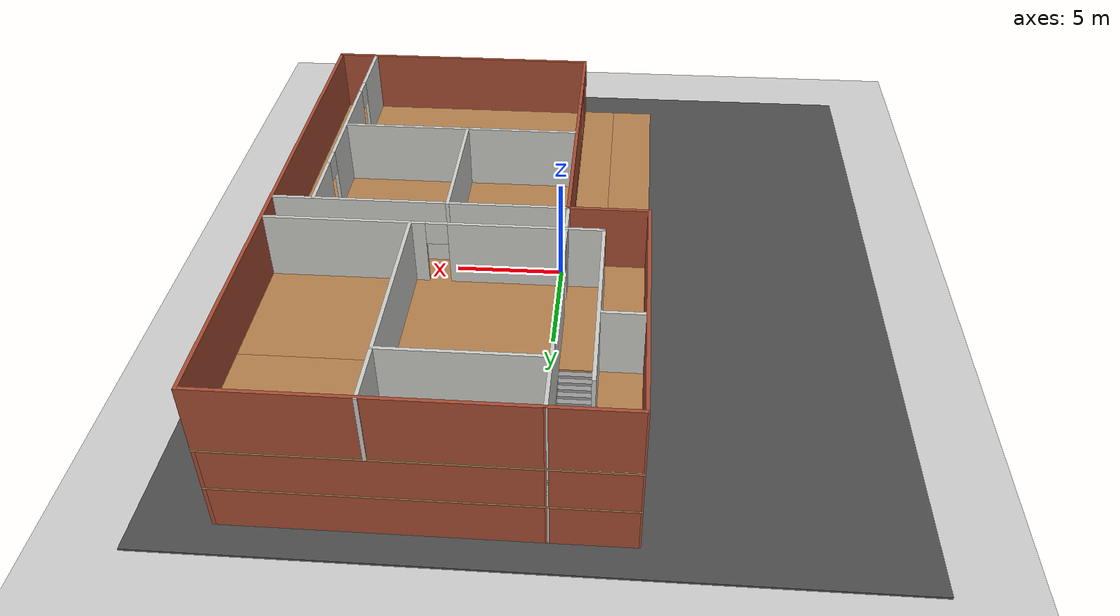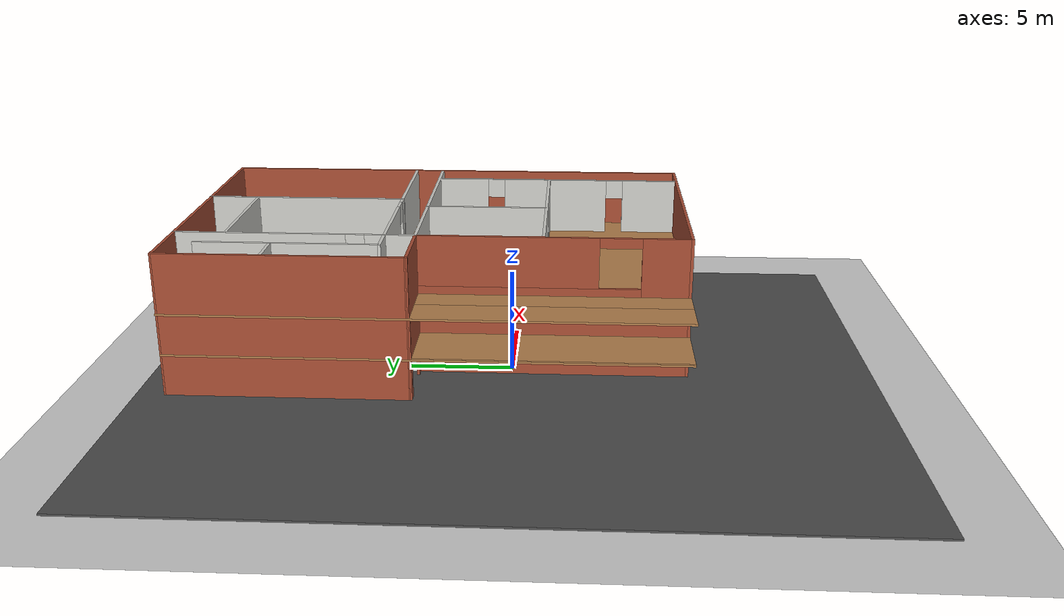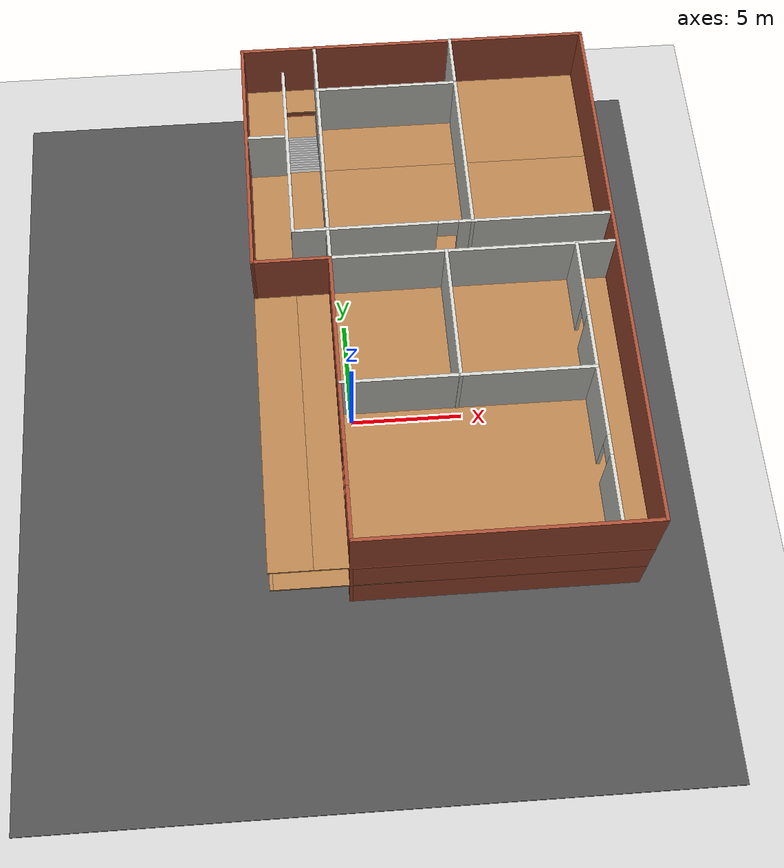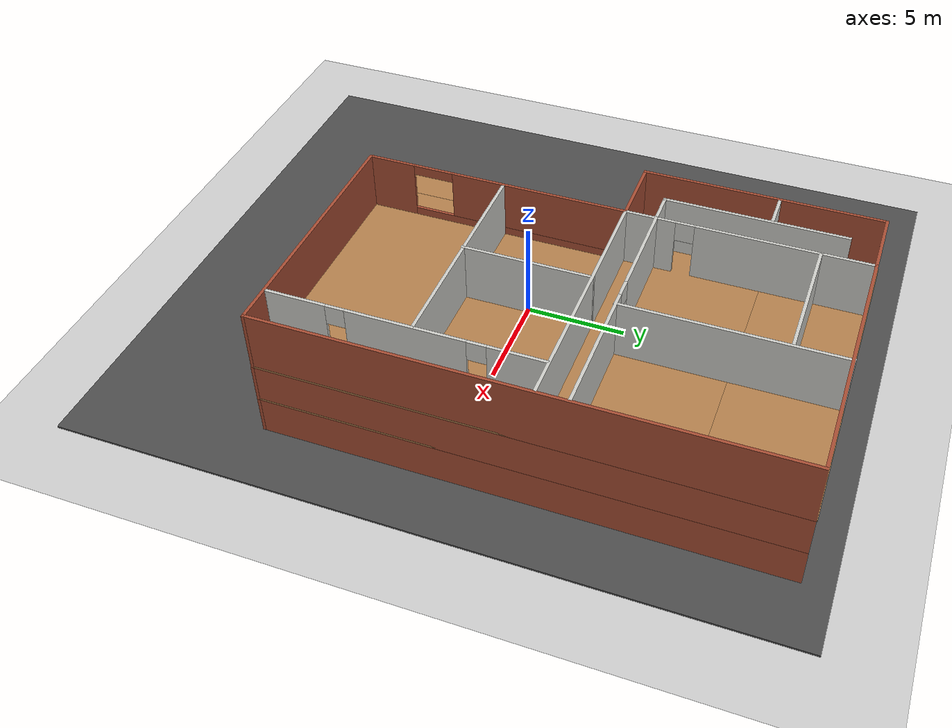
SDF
<sdf version="1.7">
 <world name="default">
  <light name="sun" type="directional">
   <pose>0 0 10 0 -0 0</pose>
   <diffuse>0.8 0.8 0.8 1</diffuse>
   <specular>0.2 0.2 0.2 1</specular>
   <attenuation>
    <range>1000</range>
    <constant>0.9</constant>
    <linear>0.01</linear>
    <quadratic>0.001</quadratic>
   </attenuation>
   <direction>-0.5 0.1 -0.9</direction>
   <spot><inner_angle>0</inner_angle><outer_angle>0</outer_angle><falloff>0</falloff></spot>
  </light>
  <model name="ground_plane">
   <static>1</static>
   <link name="link">
    <collision name="collision">
     <geometry><plane><normal>0 0 1</normal><size>100 100</size></plane></geometry>
     <surface>
      <contact><collide_bitmask>65535</collide_bitmask></contact>
      <friction><ode><mu>100</mu><mu2>50</mu2></ode></friction>
     </surface>
    </collision>
    <visual name="visual">
     <cast_shadows>0</cast_shadows>
     <geometry><plane><normal>0 0 1</normal><size>100 100</size></plane></geometry>
     <material>
      <script><uri>file://media/materials/scripts/gazebo.material</uri><name>Gazebo/Grey</name></script>
     </material>
    </visual>
   </link>
  </model>
  <model name="asphalt_plane">
   <static>1</static>
   <link name="link">
    <collision name="collision"><geometry><box><size>30 35 0.1</size></box></geometry></collision>
    <visual name="visual">
     <cast_shadows>0</cast_shadows>
     <geometry><box><size>30 35 0.1</size></box></geometry>
     <material>
      <script>
       <uri>model://asphalt_plane/materials/scripts</uri>
       <uri>model://asphalt_plane/materials/textures</uri>
       <name>vrc/asphalt</name>
      </script>
     </material>
    </visual>
   </link>
  </model>
  <physics name="default_physics" default="0" type="ode">
   <ode>
    <solver>
     <type>quick</type>
     <iters>10</iters>
     <sor>1.3</sor>
     <use_dynamic_moi_rescaling>0</use_dynamic_moi_rescaling>
    </solver>
    <constraints>
     <cfm>0</cfm>
     <erp>0.2</erp>
     <contact_max_correcting_vel>100</contact_max_correcting_vel>
     <contact_surface_layer>0.001</contact_surface_layer>
    </constraints>
   </ode>
   <max_step_size>0.004</max_step_size>
   <real_time_factor>1</real_time_factor>
   <real_time_update_rate>250</real_time_update_rate>
  </physics>
  <gravity>0 0 -9.8066</gravity>
  <magnetic_field>6e-06 2.3e-05 -4.2e-05</magnetic_field>
  <atmosphere type="adiabatic"/>
  <scene><ambient>0.4 0.4 0.4 1</ambient><background>0.7 0.7 0.7 1</background><shadows>1</shadows></scene>
  <spherical_coordinates>
   <surface_model>EARTH_WGS84</surface_model>
   <latitude_deg>0</latitude_deg>
   <longitude_deg>0</longitude_deg>
   <elevation>0</elevation>
   <heading_deg>0</heading_deg>
  </spherical_coordinates>
  <model name="add2">
   <pose>3.92279 3.81829 0 0 -0 0</pose>
   <link name="Floor_1">
    <pose>-0 -0.017421 2 0 -0 0</pose>
    <visual name="Floor_1_Visual_0">
     <pose>-7.90201 0 0.05 0 -0 0</pose>
     <geometry><box><size>0.146133 24.7002 0.1</size></box></geometry>
     <material>
      <script><uri>file://media/materials/scripts/gazebo.material</uri><name>Gazebo/Wood</name></script>
      <ambient>1 1 1 1</ambient>
     </material>
     <meta><layer>1</layer></meta>
    </visual>
    <collision name="Floor_1_Collision_0">
     <geometry><box><size>0.146133 24.7002 0.1</size></box></geometry>
     <pose>-7.90201 0 0.05 0 -0 0</pose>
    </collision>
    <visual name="Floor_1_Visual_1">
     <pose>0.073066 -2.47542 0.05 0 -0 0</pose>
     <geometry><box><size>15.804 19.7493 0.1</size></box></geometry>
     <material>
      <script><uri>file://media/materials/scripts/gazebo.material</uri><name>Gazebo/Wood</name></script>
      <ambient>1 1 1 1</ambient>
     </material>
     <meta><layer>1</layer></meta>
    </visual>
    <collision name="Floor_1_Collision_1">
     <geometry><box><size>15.804 19.7493 0.1</size></box></geometry>
     <pose>0.073066 -2.47542 0.05 0 -0 0</pose>
    </collision>
    <visual name="Floor_1_Visual_2">
     <pose>0.923066 9.87465 0.05 0 -0 0</pose>
     <geometry><box><size>14.104 4.95085 0.1</size></box></geometry>
     <material>
      <script><uri>file://media/materials/scripts/gazebo.material</uri><name>Gazebo/Wood</name></script>
      <ambient>1 1 1 1</ambient>
     </material>
     <meta><layer>1</layer></meta>
    </visual>
    <collision name="Floor_1_Collision_2">
     <geometry><box><size>14.104 4.95085 0.1</size></box></geometry>
     <pose>0.923066 9.87465 0.05 0 -0 0</pose>
    </collision>
    <visual name="Floor_1_Visual_3">
     <pose>-6.97895 11.6107 0.05 0 -0 0</pose>
     <geometry><box><size>1.7 1.47885 0.1</size></box></geometry>
     <material>
      <script><uri>file://media/materials/scripts/gazebo.material</uri><name>Gazebo/Wood</name></script>
      <ambient>1 1 1 1</ambient>
     </material>
     <meta><layer>1</layer></meta>
    </visual>
    <collision name="Floor_1_Collision_3">
     <geometry><box><size>1.7 1.47885 0.1</size></box></geometry>
     <pose>-6.97895 11.6107 0.05 0 -0 0</pose>
    </collision>
   </link>
   <link name="Floor_3">
    <pose>-0 0.012793 4 0 -0 0</pose>
    <visual name="Floor_3_Visual_0">
     <pose>-7.03075 0 0.05 0 -0 0</pose>
     <geometry><box><size>1.88866 24.709 0.1</size></box></geometry>
     <material>
      <script><uri>file://media/materials/scripts/gazebo.material</uri><name>Gazebo/Wood</name></script>
      <ambient>1 1 1 1</ambient>
     </material>
     <meta><layer>2</layer></meta>
    </visual>
    <collision name="Floor_3_Collision_0">
     <geometry><box><size>1.88866 24.709 0.1</size></box></geometry>
     <pose>-7.03075 0 0.05 0 -0 0</pose>
    </collision>
    <visual name="Floor_3_Visual_1">
     <pose>0.944329 -2.5038 0.05 0 -0 0</pose>
     <geometry><box><size>14.0615 19.7014 0.1</size></box></geometry>
     <material>
      <script><uri>file://media/materials/scripts/gazebo.material</uri><name>Gazebo/Wood</name></script>
      <ambient>1 1 1 1</ambient>
     </material>
     <meta><layer>2</layer></meta>
    </visual>
    <collision name="Floor_3_Collision_1">
     <geometry><box><size>14.0615 19.7014 0.1</size></box></geometry>
     <pose>0.944329 -2.5038 0.05 0 -0 0</pose>
    </collision>
    <visual name="Floor_3_Visual_2">
     <pose>1.74399 9.85069 0.05 0 -0 0</pose>
     <geometry><box><size>12.4622 5.0076 0.1</size></box></geometry>
     <material>
      <script><uri>file://media/materials/scripts/gazebo.material</uri><name>Gazebo/Wood</name></script>
      <ambient>1 1 1 1</ambient>
     </material>
     <meta><layer>2</layer></meta>
    </visual>
    <collision name="Floor_3_Collision_2">
     <geometry><box><size>12.4622 5.0076 0.1</size></box></geometry>
     <pose>1.74399 9.85069 0.05 0 -0 0</pose>
    </collision>
    <visual name="Floor_3_Visual_3">
     <pose>-5.28676 11.6007 0.05 0 -0 0</pose>
     <geometry><box><size>1.59932 1.5076 0.1</size></box></geometry>
     <material>
      <script><uri>file://media/materials/scripts/gazebo.material</uri><name>Gazebo/Wood</name></script>
      <ambient>1 1 1 1</ambient>
     </material>
     <meta><layer>2</layer></meta>
    </visual>
    <collision name="Floor_3_Collision_3">
     <geometry><box><size>1.59932 1.5076 0.1</size></box></geometry>
     <pose>-5.28676 11.6007 0.05 0 -0 0</pose>
    </collision>
   </link>
   <link name="Stairs_0">
    <visual name="Stairs_0_Visual_0">
     <pose>-6.97895 7.49754 0.066667 0 -0 -3.14159</pose>
     <geometry><box><size>1.7 0.231467 0.133333</size></box></geometry>
     <material>
      <script><uri>file://media/materials/scripts/gazebo.material</uri><name>Gazebo/CeilingTiled</name></script>
      <ambient>1 1 1 1</ambient>
     </material>
     <meta><layer>0</layer></meta>
    </visual>
    <collision name="Stairs_0_Collision_0">
     <geometry><box><size>1.7 0.231467 0.133333</size></box></geometry>
     <pose>-6.97895 7.49754 0.066667 0 -0 -3.14159</pose>
    </collision>
    <visual name="Stairs_0_Visual_1">
     <pose>-6.97895 7.72901 0.2 0 -0 -3.14159</pose>
     <geometry><box><size>1.7 0.231467 0.133333</size></box></geometry>
     <material>
      <script><uri>file://media/materials/scripts/gazebo.material</uri><name>Gazebo/CeilingTiled</name></script>
      <ambient>1 1 1 1</ambient>
     </material>
     <meta><layer>0</layer></meta>
    </visual>
    <collision name="Stairs_0_Collision_1">
     <geometry><box><size>1.7 0.231467 0.133333</size></box></geometry>
     <pose>-6.97895 7.72901 0.2 0 -0 -3.14159</pose>
    </collision>
    <visual name="Stairs_0_Visual_2">
     <pose>-6.97895 7.96047 0.333333 0 -0 -3.14159</pose>
     <geometry><box><size>1.7 0.231467 0.133333</size></box></geometry>
     <material>
      <script><uri>file://media/materials/scripts/gazebo.material</uri><name>Gazebo/CeilingTiled</name></script>
      <ambient>1 1 1 1</ambient>
     </material>
     <meta><layer>0</layer></meta>
    </visual>
    <collision name="Stairs_0_Collision_2">
     <geometry><box><size>1.7 0.231467 0.133333</size></box></geometry>
     <pose>-6.97895 7.96047 0.333333 0 -0 -3.14159</pose>
    </collision>
    <visual name="Stairs_0_Visual_3">
     <pose>-6.97895 8.19194 0.466667 0 -0 -3.14159</pose>
     <geometry><box><size>1.7 0.231467 0.133333</size></box></geometry>
     <material>
      <script><uri>file://media/materials/scripts/gazebo.material</uri><name>Gazebo/CeilingTiled</name></script>
      <ambient>1 1 1 1</ambient>
     </material>
     <meta><layer>0</layer></meta>
    </visual>
    <collision name="Stairs_0_Collision_3">
     <geometry><box><size>1.7 0.231467 0.133333</size></box></geometry>
     <pose>-6.97895 8.19194 0.466667 0 -0 -3.14159</pose>
    </collision>
    <visual name="Stairs_0_Visual_4">
     <pose>-6.97895 8.42341 0.6 0 -0 -3.14159</pose>
     <geometry><box><size>1.7 0.231467 0.133333</size></box></geometry>
     <material>
      <script><uri>file://media/materials/scripts/gazebo.material</uri><name>Gazebo/CeilingTiled</name></script>
      <ambient>1 1 1 1</ambient>
     </material>
     <meta><layer>0</layer></meta>
    </visual>
    <collision name="Stairs_0_Collision_4">
     <geometry><box><size>1.7 0.231467 0.133333</size></box></geometry>
     <pose>-6.97895 8.42341 0.6 0 -0 -3.14159</pose>
    </collision>
    <visual name="Stairs_0_Visual_5">
     <pose>-6.97895 8.65487 0.733333 0 -0 -3.14159</pose>
     <geometry><box><size>1.7 0.231467 0.133333</size></box></geometry>
     <material>
      <script><uri>file://media/materials/scripts/gazebo.material</uri><name>Gazebo/CeilingTiled</name></script>
      <ambient>1 1 1 1</ambient>
     </material>
     <meta><layer>0</layer></meta>
    </visual>
    <collision name="Stairs_0_Collision_5">
     <geometry><box><size>1.7 0.231467 0.133333</size></box></geometry>
     <pose>-6.97895 8.65487 0.733333 0 -0 -3.14159</pose>
    </collision>
    <visual name="Stairs_0_Visual_6">
     <pose>-6.97895 8.88634 0.866667 0 -0 -3.14159</pose>
     <geometry><box><size>1.7 0.231467 0.133333</size></box></geometry>
     <material>
      <script><uri>file://media/materials/scripts/gazebo.material</uri><name>Gazebo/CeilingTiled</name></script>
      <ambient>1 1 1 1</ambient>
     </material>
     <meta><layer>0</layer></meta>
    </visual>
    <collision name="Stairs_0_Collision_6">
     <geometry><box><size>1.7 0.231467 0.133333</size></box></geometry>
     <pose>-6.97895 8.88634 0.866667 0 -0 -3.14159</pose>
    </collision>
    <visual name="Stairs_0_Visual_7">
     <pose>-6.97895 9.11781 1 0 -0 -3.14159</pose>
     <geometry><box><size>1.7 0.231467 0.133333</size></box></geometry>
     <material>
      <script><uri>file://media/materials/scripts/gazebo.material</uri><name>Gazebo/CeilingTiled</name></script>
      <ambient>1 1 1 1</ambient>
     </material>
     <meta><layer>0</layer></meta>
    </visual>
    <collision name="Stairs_0_Collision_7">
     <geometry><box><size>1.7 0.231467 0.133333</size></box></geometry>
     <pose>-6.97895 9.11781 1 0 -0 -3.14159</pose>
    </collision>
    <visual name="Stairs_0_Visual_8">
     <pose>-6.97895 9.34927 1.13333 0 -0 -3.14159</pose>
     <geometry><box><size>1.7 0.231467 0.133333</size></box></geometry>
     <material>
      <script><uri>file://media/materials/scripts/gazebo.material</uri><name>Gazebo/CeilingTiled</name></script>
      <ambient>1 1 1 1</ambient>
     </material>
     <meta><layer>0</layer></meta>
    </visual>
    <collision name="Stairs_0_Collision_8">
     <geometry><box><size>1.7 0.231467 0.133333</size></box></geometry>
     <pose>-6.97895 9.34927 1.13333 0 -0 -3.14159</pose>
    </collision>
    <visual name="Stairs_0_Visual_9">
     <pose>-6.97895 9.58074 1.26667 0 -0 -3.14159</pose>
     <geometry><box><size>1.7 0.231467 0.133333</size></box></geometry>
     <material>
      <script><uri>file://media/materials/scripts/gazebo.material</uri><name>Gazebo/CeilingTiled</name></script>
      <ambient>1 1 1 1</ambient>
     </material>
     <meta><layer>0</layer></meta>
    </visual>
    <collision name="Stairs_0_Collision_9">
     <geometry><box><size>1.7 0.231467 0.133333</size></box></geometry>
     <pose>-6.97895 9.58074 1.26667 0 -0 -3.14159</pose>
    </collision>
    <visual name="Stairs_0_Visual_10">
     <pose>-6.97895 9.81221 1.4 0 -0 -3.14159</pose>
     <geometry><box><size>1.7 0.231467 0.133333</size></box></geometry>
     <material>
      <script><uri>file://media/materials/scripts/gazebo.material</uri><name>Gazebo/CeilingTiled</name></script>
      <ambient>1 1 1 1</ambient>
     </material>
     <meta><layer>0</layer></meta>
    </visual>
    <collision name="Stairs_0_Collision_10">
     <geometry><box><size>1.7 0.231467 0.133333</size></box></geometry>
     <pose>-6.97895 9.81221 1.4 0 -0 -3.14159</pose>
    </collision>
    <visual name="Stairs_0_Visual_11">
     <pose>-6.97895 10.0437 1.53333 0 -0 -3.14159</pose>
     <geometry><box><size>1.7 0.231467 0.133333</size></box></geometry>
     <material>
      <script><uri>file://media/materials/scripts/gazebo.material</uri><name>Gazebo/CeilingTiled</name></script>
      <ambient>1 1 1 1</ambient>
     </material>
     <meta><layer>0</layer></meta>
    </visual>
    <collision name="Stairs_0_Collision_11">
     <geometry><box><size>1.7 0.231467 0.133333</size></box></geometry>
     <pose>-6.97895 10.0437 1.53333 0 -0 -3.14159</pose>
    </collision>
    <visual name="Stairs_0_Visual_12">
     <pose>-6.97895 10.2751 1.66667 0 -0 -3.14159</pose>
     <geometry><box><size>1.7 0.231467 0.133333</size></box></geometry>
     <material>
      <script><uri>file://media/materials/scripts/gazebo.material</uri><name>Gazebo/CeilingTiled</name></script>
      <ambient>1 1 1 1</ambient>
     </material>
     <meta><layer>0</layer></meta>
    </visual>
    <collision name="Stairs_0_Collision_12">
     <geometry><box><size>1.7 0.231467 0.133333</size></box></geometry>
     <pose>-6.97895 10.2751 1.66667 0 -0 -3.14159</pose>
    </collision>
    <visual name="Stairs_0_Visual_13">
     <pose>-6.97895 10.5066 1.8 0 -0 -3.14159</pose>
     <geometry><box><size>1.7 0.231467 0.133333</size></box></geometry>
     <material>
      <script><uri>file://media/materials/scripts/gazebo.material</uri><name>Gazebo/CeilingTiled</name></script>
      <ambient>1 1 1 1</ambient>
     </material>
     <meta><layer>0</layer></meta>
    </visual>
    <collision name="Stairs_0_Collision_13">
     <geometry><box><size>1.7 0.231467 0.133333</size></box></geometry>
     <pose>-6.97895 10.5066 1.8 0 -0 -3.14159</pose>
    </collision>
    <visual name="Stairs_0_Visual_14">
     <pose>-6.97895 10.7381 1.93333 0 -0 -3.14159</pose>
     <geometry><box><size>1.7 0.231467 0.133333</size></box></geometry>
     <material>
      <script><uri>file://media/materials/scripts/gazebo.material</uri><name>Gazebo/CeilingTiled</name></script>
      <ambient>1 1 1 1</ambient>
     </material>
     <meta><layer>0</layer></meta>
    </visual>
    <collision name="Stairs_0_Collision_14">
     <geometry><box><size>1.7 0.231467 0.133333</size></box></geometry>
     <pose>-6.97895 10.7381 1.93333 0 -0 -3.14159</pose>
    </collision>
   </link>
   <link name="Stairs_1">
    <visual name="Stairs_1_Visual_0">
     <pose>-5.28676 10.743 2.06667 0 -0 0</pose>
     <geometry><box><size>1.59932 0.233333 0.133333</size></box></geometry>
     <material>
      <script><uri>file://media/materials/scripts/gazebo.material</uri><name>Gazebo/Grey</name></script>
      <ambient>1 1 1 1</ambient>
     </material>
     <meta><layer>1</layer></meta>
    </visual>
    <collision name="Stairs_1_Collision_0">
     <geometry><box><size>1.59932 0.233333 0.133333</size></box></geometry>
     <pose>-5.28676 10.743 2.06667 0 -0 0</pose>
    </collision>
    <visual name="Stairs_1_Visual_1">
     <pose>-5.28676 10.5097 2.2 0 -0 0</pose>
     <geometry><box><size>1.59932 0.233333 0.133333</size></box></geometry>
     <material>
      <script><uri>file://media/materials/scripts/gazebo.material</uri><name>Gazebo/Grey</name></script>
      <ambient>1 1 1 1</ambient>
     </material>
     <meta><layer>1</layer></meta>
    </visual>
    <collision name="Stairs_1_Collision_1">
     <geometry><box><size>1.59932 0.233333 0.133333</size></box></geometry>
     <pose>-5.28676 10.5097 2.2 0 -0 0</pose>
    </collision>
    <visual name="Stairs_1_Visual_2">
     <pose>-5.28676 10.2763 2.33333 0 -0 0</pose>
     <geometry><box><size>1.59932 0.233333 0.133333</size></box></geometry>
     <material>
      <script><uri>file://media/materials/scripts/gazebo.material</uri><name>Gazebo/Grey</name></script>
      <ambient>1 1 1 1</ambient>
     </material>
     <meta><layer>1</layer></meta>
    </visual>
    <collision name="Stairs_1_Collision_2">
     <geometry><box><size>1.59932 0.233333 0.133333</size></box></geometry>
     <pose>-5.28676 10.2763 2.33333 0 -0 0</pose>
    </collision>
    <visual name="Stairs_1_Visual_3">
     <pose>-5.28676 10.043 2.46667 0 -0 0</pose>
     <geometry><box><size>1.59932 0.233333 0.133333</size></box></geometry>
     <material>
      <script><uri>file://media/materials/scripts/gazebo.material</uri><name>Gazebo/Grey</name></script>
      <ambient>1 1 1 1</ambient>
     </material>
     <meta><layer>1</layer></meta>
    </visual>
    <collision name="Stairs_1_Collision_3">
     <geometry><box><size>1.59932 0.233333 0.133333</size></box></geometry>
     <pose>-5.28676 10.043 2.46667 0 -0 0</pose>
    </collision>
    <visual name="Stairs_1_Visual_4">
     <pose>-5.28676 9.80968 2.6 0 -0 0</pose>
     <geometry><box><size>1.59932 0.233333 0.133333</size></box></geometry>
     <material>
      <script><uri>file://media/materials/scripts/gazebo.material</uri><name>Gazebo/Grey</name></script>
      <ambient>1 1 1 1</ambient>
     </material>
     <meta><layer>1</layer></meta>
    </visual>
    <collision name="Stairs_1_Collision_4">
     <geometry><box><size>1.59932 0.233333 0.133333</size></box></geometry>
     <pose>-5.28676 9.80968 2.6 0 -0 0</pose>
    </collision>
    <visual name="Stairs_1_Visual_5">
     <pose>-5.28676 9.57635 2.73333 0 -0 0</pose>
     <geometry><box><size>1.59932 0.233333 0.133333</size></box></geometry>
     <material>
      <script><uri>file://media/materials/scripts/gazebo.material</uri><name>Gazebo/Grey</name></script>
      <ambient>1 1 1 1</ambient>
     </material>
     <meta><layer>1</layer></meta>
    </visual>
    <collision name="Stairs_1_Collision_5">
     <geometry><box><size>1.59932 0.233333 0.133333</size></box></geometry>
     <pose>-5.28676 9.57635 2.73333 0 -0 0</pose>
    </collision>
    <visual name="Stairs_1_Visual_6">
     <pose>-5.28676 9.34301 2.86667 0 -0 0</pose>
     <geometry><box><size>1.59932 0.233333 0.133333</size></box></geometry>
     <material>
      <script><uri>file://media/materials/scripts/gazebo.material</uri><name>Gazebo/Grey</name></script>
      <ambient>1 1 1 1</ambient>
     </material>
     <meta><layer>1</layer></meta>
    </visual>
    <collision name="Stairs_1_Collision_6">
     <geometry><box><size>1.59932 0.233333 0.133333</size></box></geometry>
     <pose>-5.28676 9.34301 2.86667 0 -0 0</pose>
    </collision>
    <visual name="Stairs_1_Visual_7">
     <pose>-5.28676 9.10968 3 0 -0 0</pose>
     <geometry><box><size>1.59932 0.233333 0.133333</size></box></geometry>
     <material>
      <script><uri>file://media/materials/scripts/gazebo.material</uri><name>Gazebo/Grey</name></script>
      <ambient>1 1 1 1</ambient>
     </material>
     <meta><layer>1</layer></meta>
    </visual>
    <collision name="Stairs_1_Collision_7">
     <geometry><box><size>1.59932 0.233333 0.133333</size></box></geometry>
     <pose>-5.28676 9.10968 3 0 -0 0</pose>
    </collision>
    <visual name="Stairs_1_Visual_8">
     <pose>-5.28676 8.87635 3.13333 0 -0 0</pose>
     <geometry><box><size>1.59932 0.233333 0.133333</size></box></geometry>
     <material>
      <script><uri>file://media/materials/scripts/gazebo.material</uri><name>Gazebo/Grey</name></script>
      <ambient>1 1 1 1</ambient>
     </material>
     <meta><layer>1</layer></meta>
    </visual>
    <collision name="Stairs_1_Collision_8">
     <geometry><box><size>1.59932 0.233333 0.133333</size></box></geometry>
     <pose>-5.28676 8.87635 3.13333 0 -0 0</pose>
    </collision>
    <visual name="Stairs_1_Visual_9">
     <pose>-5.28676 8.64301 3.26667 0 -0 0</pose>
     <geometry><box><size>1.59932 0.233333 0.133333</size></box></geometry>
     <material>
      <script><uri>file://media/materials/scripts/gazebo.material</uri><name>Gazebo/Grey</name></script>
      <ambient>1 1 1 1</ambient>
     </material>
     <meta><layer>1</layer></meta>
    </visual>
    <collision name="Stairs_1_Collision_9">
     <geometry><box><size>1.59932 0.233333 0.133333</size></box></geometry>
     <pose>-5.28676 8.64301 3.26667 0 -0 0</pose>
    </collision>
    <visual name="Stairs_1_Visual_10">
     <pose>-5.28676 8.40968 3.4 0 -0 0</pose>
     <geometry><box><size>1.59932 0.233333 0.133333</size></box></geometry>
     <material>
      <script><uri>file://media/materials/scripts/gazebo.material</uri><name>Gazebo/Grey</name></script>
      <ambient>1 1 1 1</ambient>
     </material>
     <meta><layer>1</layer></meta>
    </visual>
    <collision name="Stairs_1_Collision_10">
     <geometry><box><size>1.59932 0.233333 0.133333</size></box></geometry>
     <pose>-5.28676 8.40968 3.4 0 -0 0</pose>
    </collision>
    <visual name="Stairs_1_Visual_11">
     <pose>-5.28676 8.17635 3.53333 0 -0 0</pose>
     <geometry><box><size>1.59932 0.233333 0.133333</size></box></geometry>
     <material>
      <script><uri>file://media/materials/scripts/gazebo.material</uri><name>Gazebo/Grey</name></script>
      <ambient>1 1 1 1</ambient>
     </material>
     <meta><layer>1</layer></meta>
    </visual>
    <collision name="Stairs_1_Collision_11">
     <geometry><box><size>1.59932 0.233333 0.133333</size></box></geometry>
     <pose>-5.28676 8.17635 3.53333 0 -0 0</pose>
    </collision>
    <visual name="Stairs_1_Visual_12">
     <pose>-5.28676 7.94301 3.66667 0 -0 0</pose>
     <geometry><box><size>1.59932 0.233333 0.133333</size></box></geometry>
     <material>
      <script><uri>file://media/materials/scripts/gazebo.material</uri><name>Gazebo/Grey</name></script>
      <ambient>1 1 1 1</ambient>
     </material>
     <meta><layer>1</layer></meta>
    </visual>
    <collision name="Stairs_1_Collision_12">
     <geometry><box><size>1.59932 0.233333 0.133333</size></box></geometry>
     <pose>-5.28676 7.94301 3.66667 0 -0 0</pose>
    </collision>
    <visual name="Stairs_1_Visual_13">
     <pose>-5.28676 7.70968 3.8 0 -0 0</pose>
     <geometry><box><size>1.59932 0.233333 0.133333</size></box></geometry>
     <material>
      <script><uri>file://media/materials/scripts/gazebo.material</uri><name>Gazebo/Grey</name></script>
      <ambient>1 1 1 1</ambient>
     </material>
     <meta><layer>1</layer></meta>
    </visual>
    <collision name="Stairs_1_Collision_13">
     <geometry><box><size>1.59932 0.233333 0.133333</size></box></geometry>
     <pose>-5.28676 7.70968 3.8 0 -0 0</pose>
    </collision>
    <visual name="Stairs_1_Visual_14">
     <pose>-5.28676 7.47635 3.93333 0 -0 0</pose>
     <geometry><box><size>1.59932 0.233333 0.133333</size></box></geometry>
     <material>
      <script><uri>file://media/materials/scripts/gazebo.material</uri><name>Gazebo/Grey</name></script>
      <ambient>1 1 1 1</ambient>
     </material>
     <meta><layer>1</layer></meta>
    </visual>
    <collision name="Stairs_1_Collision_14">
     <geometry><box><size>1.59932 0.233333 0.133333</size></box></geometry>
     <pose>-5.28676 7.47635 3.93333 0 -0 0</pose>
    </collision>
   </link>
   <link name="Wall_0">
    <collision name="Wall_0_Collision">
     <geometry><box><size>3.5 0.15 2</size></box></geometry>
     <pose>0 0 1 0 -0 0</pose>
    </collision>
    <visual name="Wall_0_Visual">
     <pose>0 0 1 0 -0 0</pose>
     <geometry><box><size>3.5 0.15 2</size></box></geometry>
     <material>
      <script><uri>file://media/materials/scripts/gazebo.material</uri><name>Gazebo/Bricks</name></script>
      <ambient>1 1 1 1</ambient>
     </material>
     <meta><layer>0</layer></meta>
    </visual>
    <pose>-6.22492 12.254 0 0 -0 0.00209</pose>
   </link>
   <link name="Wall_11">
    <collision name="Wall_11_Collision">
     <geometry><box><size>11.7 0.15 2</size></box></geometry>
     <pose>0 0 1 0 -0 0</pose>
    </collision>
    <visual name="Wall_11_Visual">
     <pose>0 0 1 0 -0 0</pose>
     <geometry><box><size>11.7 0.15 2</size></box></geometry>
     <material>
      <script><uri>file://media/materials/scripts/gazebo.material</uri><name>Gazebo/CeilingTiled</name></script>
      <ambient>1 1 1 1</ambient>
     </material>
     <meta><layer>0</layer></meta>
    </visual>
    <pose>-4.54992 6.4825 0 0 -0 -1.5708</pose>
   </link>
   <link name="Wall_13">
    <collision name="Wall_13_Collision">
     <geometry><box><size>8.78959 0.15 2</size></box></geometry>
     <pose>0 0 1 0 -0 0</pose>
    </collision>
    <visual name="Wall_13_Visual">
     <pose>0 0 1 0 -0 0</pose>
     <geometry><box><size>8.78959 0.15 2</size></box></geometry>
     <material>
      <script><uri>file://media/materials/scripts/gazebo.material</uri><name>Gazebo/CeilingTiled</name></script>
      <ambient>1 1 1 1</ambient>
     </material>
     <meta><layer>0</layer></meta>
    </visual>
    <pose>-6.07592 6.5275 0 0 -0 1.5708</pose>
   </link>
   <link name="Wall_28">
    <collision name="Wall_28_Collision">
     <geometry><box><size>1.65 0.15 2</size></box></geometry>
     <pose>0 0 1 0 -0 0</pose>
    </collision>
    <visual name="Wall_28_Visual">
     <pose>0 0 1 0 -0 0</pose>
     <geometry><box><size>1.65 0.15 2</size></box></geometry>
     <material>
      <script><uri>file://media/materials/scripts/gazebo.material</uri><name>Gazebo/CeilingTiled</name></script>
      <ambient>1 1 1 1</ambient>
     </material>
     <meta><layer>0</layer></meta>
    </visual>
    <pose>-5.32592 2.2075 0 0 -0 0</pose>
   </link>
   <link name="Wall_30">
    <pose>-6.22492 0.704001 0 0 -0 -3.1395</pose>
    <visual name="Wall_30_Visual_0">
     <pose>-1.48393 0 1 0 -0 0</pose>
     <geometry><box><size>0.532144 0.15 2</size></box></geometry>
     <material>
      <script><uri>file://media/materials/scripts/gazebo.material</uri><name>Gazebo/Bricks</name></script>
      <ambient>1 1 1 1</ambient>
     </material>
     <meta><layer>0</layer></meta>
    </visual>
    <collision name="Wall_30_Collision_0">
     <geometry><box><size>0.532144 0.15 2</size></box></geometry>
     <pose>-1.48393 0 1 0 -0 0</pose>
    </collision>
    <visual name="Wall_30_Visual_1">
     <pose>1.49904 0 1 0 -0 0</pose>
     <geometry><box><size>0.501919 0.15 2</size></box></geometry>
     <material>
      <script><uri>file://media/materials/scripts/gazebo.material</uri><name>Gazebo/Bricks</name></script>
      <ambient>1 1 1 1</ambient>
     </material>
     <meta><layer>0</layer></meta>
    </visual>
    <collision name="Wall_30_Collision_1">
     <geometry><box><size>0.501919 0.15 2</size></box></geometry>
     <pose>1.49904 0 1 0 -0 0</pose>
    </collision>
   </link>
   <link name="Wall_32">
    <collision name="Wall_32_Collision">
     <geometry><box><size>12.6 0.15 2</size></box></geometry>
     <pose>0 0 1 0 -0 0</pose>
    </collision>
    <visual name="Wall_32_Visual">
     <pose>0 0 1 0 -0 0</pose>
     <geometry><box><size>12.6 0.15 2</size></box></geometry>
     <material>
      <script><uri>file://media/materials/scripts/gazebo.material</uri><name>Gazebo/Bricks</name></script>
      <ambient>1 1 1 1</ambient>
     </material>
     <meta><layer>0</layer></meta>
    </visual>
    <pose>1.67508 12.2575 0 0 -0 0</pose>
   </link>
   <link name="Wall_39">
    <collision name="Wall_39_Collision">
     <geometry><box><size>24.7 0.15 2</size></box></geometry>
     <pose>0 0 1 0 -0 0</pose>
    </collision>
    <visual name="Wall_39_Visual">
     <pose>0 0 1 0 -0 0</pose>
     <geometry><box><size>24.7 0.15 2</size></box></geometry>
     <material>
      <script><uri>file://media/materials/scripts/gazebo.material</uri><name>Gazebo/Bricks</name></script>
      <ambient>1 1 1 1</ambient>
     </material>
     <meta><layer>0</layer></meta>
    </visual>
    <pose>7.90008 -0.017499 0 0 -0 -1.5708</pose>
   </link>
   <link name="Wall_41">
    <collision name="Wall_41_Collision">
     <geometry><box><size>12.6 0.15 2</size></box></geometry>
     <pose>0 0 1 0 -0 0</pose>
    </collision>
    <visual name="Wall_41_Visual">
     <pose>0 0 1 0 -0 0</pose>
     <geometry><box><size>12.6 0.15 2</size></box></geometry>
     <material>
      <script><uri>file://media/materials/scripts/gazebo.material</uri><name>Gazebo/Bricks</name></script>
      <ambient>1 1 1 1</ambient>
     </material>
     <meta><layer>0</layer></meta>
    </visual>
    <pose>1.67508 -12.2925 0 0 -0 3.14159</pose>
   </link>
   <link name="Wall_43">
    <collision name="Wall_43_Collision">
     <geometry><box><size>13.15 0.15 2</size></box></geometry>
     <pose>0 0 1 0 -0 0</pose>
    </collision>
    <visual name="Wall_43_Visual">
     <pose>0 0 1 0 -0 0</pose>
     <geometry><box><size>13.15 0.15 2</size></box></geometry>
     <material>
      <script><uri>file://media/materials/scripts/gazebo.material</uri><name>Gazebo/Bricks</name></script>
      <ambient>1 1 1 1</ambient>
     </material>
     <meta><layer>0</layer></meta>
    </visual>
    <pose>-4.54992 -5.7925 0 0 -0 1.5708</pose>
   </link>
   <link name="Wall_45">
    <collision name="Wall_45_Collision">
     <geometry><box><size>3.50001 0.15 2</size></box></geometry>
     <pose>0 0 1 0 -0 0</pose>
    </collision>
    <visual name="Wall_45_Visual">
     <pose>0 0 1 0 -0 0</pose>
     <geometry><box><size>3.50001 0.15 2</size></box></geometry>
     <material>
      <script><uri>file://media/materials/scripts/gazebo.material</uri><name>Gazebo/Bricks</name></script>
      <ambient>1 1 1 1</ambient>
     </material>
     <meta><layer>1</layer></meta>
    </visual>
    <pose>-6.22492 12.254 2 0 -0 0.00209</pose>
   </link>
   <link name="Wall_46">
    <collision name="Wall_46_Collision">
     <geometry><box><size>11.7 0.15 2</size></box></geometry>
     <pose>0 0 1 0 -0 0</pose>
    </collision>
    <visual name="Wall_46_Visual">
     <pose>0 0 1 0 -0 0</pose>
     <geometry><box><size>11.7 0.15 2</size></box></geometry>
     <material>
      <script><uri>file://media/materials/scripts/gazebo.material</uri><name>Gazebo/Bricks</name></script>
      <ambient>1 1 1 1</ambient>
     </material>
     <meta><layer>1</layer></meta>
    </visual>
    <pose>-7.89992 6.4755 2 0 -0 -1.5708</pose>
   </link>
   <link name="Wall_47">
    <collision name="Wall_47_Collision">
     <geometry><box><size>11.7 0.15 2</size></box></geometry>
     <pose>0 0 1 0 -0 0</pose>
    </collision>
    <visual name="Wall_47_Visual">
     <pose>0 0 1 0 -0 0</pose>
     <geometry><box><size>11.7 0.15 2</size></box></geometry>
     <material>
      <script><uri>file://media/materials/scripts/gazebo.material</uri><name>Gazebo/CeilingTiled</name></script>
      <ambient>1 1 1 1</ambient>
     </material>
     <meta><layer>1</layer></meta>
    </visual>
    <pose>-4.54992 6.4825 2 0 -0 -1.5708</pose>
   </link>
   <link name="Wall_48">
    <collision name="Wall_48_Collision">
     <geometry><box><size>8.79 0.15 2</size></box></geometry>
     <pose>0 0 1 0 -0 0</pose>
    </collision>
    <visual name="Wall_48_Visual">
     <pose>0 0 1 0 -0 0</pose>
     <geometry><box><size>8.79 0.15 2</size></box></geometry>
     <material>
      <script><uri>file://media/materials/scripts/gazebo.material</uri><name>Gazebo/CeilingTiled</name></script>
      <ambient>1 1 1 1</ambient>
     </material>
     <meta><layer>1</layer></meta>
    </visual>
    <pose>-6.07592 6.5275 2 0 -0 1.5708</pose>
   </link>
   <link name="Wall_49">
    <collision name="Wall_49_Collision">
     <geometry><box><size>1.65 0.15 2</size></box></geometry>
     <pose>0 0 1 0 -0 0</pose>
    </collision>
    <visual name="Wall_49_Visual">
     <pose>0 0 1 0 -0 0</pose>
     <geometry><box><size>1.65 0.15 2</size></box></geometry>
     <material>
      <script><uri>file://media/materials/scripts/gazebo.material</uri><name>Gazebo/CeilingTiled</name></script>
      <ambient>1 1 1 1</ambient>
     </material>
     <meta><layer>1</layer></meta>
    </visual>
    <pose>-5.32592 2.2075 2 0 -0 0</pose>
   </link>
   <link name="Wall_50">
    <collision name="Wall_50_Collision">
     <geometry><box><size>3.50001 0.15 2</size></box></geometry>
     <pose>0 0 1 0 -0 0</pose>
    </collision>
    <visual name="Wall_50_Visual">
     <pose>0 0 1 0 -0 0</pose>
     <geometry><box><size>3.50001 0.15 2</size></box></geometry>
     <material>
      <script><uri>file://media/materials/scripts/gazebo.material</uri><name>Gazebo/Bricks</name></script>
      <ambient>1 1 1 1</ambient>
     </material>
     <meta><layer>1</layer></meta>
    </visual>
    <pose>-6.22492 0.704001 2 0 -0 -3.1395</pose>
   </link>
   <link name="Wall_51">
    <collision name="Wall_51_Collision">
     <geometry><box><size>12.6 0.15 2</size></box></geometry>
     <pose>0 0 1 0 -0 0</pose>
    </collision>
    <visual name="Wall_51_Visual">
     <pose>0 0 1 0 -0 0</pose>
     <geometry><box><size>12.6 0.15 2</size></box></geometry>
     <material>
      <script><uri>file://media/materials/scripts/gazebo.material</uri><name>Gazebo/Bricks</name></script>
      <ambient>1 1 1 1</ambient>
     </material>
     <meta><layer>1</layer></meta>
    </visual>
    <pose>1.67508 12.2575 2 0 -0 0</pose>
   </link>
   <link name="Wall_52">
    <collision name="Wall_52_Collision">
     <geometry><box><size>24.7 0.15 2</size></box></geometry>
     <pose>0 0 1 0 -0 0</pose>
    </collision>
    <visual name="Wall_52_Visual">
     <pose>0 0 1 0 -0 0</pose>
     <geometry><box><size>24.7 0.15 2</size></box></geometry>
     <material>
      <script><uri>file://media/materials/scripts/gazebo.material</uri><name>Gazebo/Bricks</name></script>
      <ambient>1 1 1 1</ambient>
     </material>
     <meta><layer>1</layer></meta>
    </visual>
    <pose>7.90008 -0.017499 2 0 -0 -1.5708</pose>
   </link>
   <link name="Wall_53">
    <collision name="Wall_53_Collision">
     <geometry><box><size>12.6 0.15 2</size></box></geometry>
     <pose>0 0 1 0 -0 0</pose>
    </collision>
    <visual name="Wall_53_Visual">
     <pose>0 0 1 0 -0 0</pose>
     <geometry><box><size>12.6 0.15 2</size></box></geometry>
     <material>
      <script><uri>file://media/materials/scripts/gazebo.material</uri><name>Gazebo/Bricks</name></script>
      <ambient>1 1 1 1</ambient>
     </material>
     <meta><layer>1</layer></meta>
    </visual>
    <pose>1.67508 -12.2925 2 0 -0 3.14159</pose>
   </link>
   <link name="Wall_54">
    <collision name="Wall_54_Collision">
     <geometry><box><size>13.15 0.15 2</size></box></geometry>
     <pose>0 0 1 0 -0 0</pose>
    </collision>
    <visual name="Wall_54_Visual">
     <pose>0 0 1 0 -0 0</pose>
     <geometry><box><size>13.15 0.15 2</size></box></geometry>
     <material>
      <script><uri>file://media/materials/scripts/gazebo.material</uri><name>Gazebo/Bricks</name></script>
      <ambient>1 1 1 1</ambient>
     </material>
     <meta><layer>1</layer></meta>
    </visual>
    <pose>-4.54992 -5.7925 2 0 -0 1.5708</pose>
   </link>
   <link name="Wall_55">
    <collision name="Wall_55_Collision">
     <geometry><box><size>1.75 0.15 2</size></box></geometry>
     <pose>0 0 1 0 -0 0</pose>
    </collision>
    <visual name="Wall_55_Visual">
     <pose>0 0 1 0 -0 0</pose>
     <geometry><box><size>1.75 0.15 2</size></box></geometry>
     <material>
      <script><uri>file://media/materials/scripts/gazebo.material</uri><name>Gazebo/CeilingTiled</name></script>
      <ambient>1 1 1 1</ambient>
     </material>
     <meta><layer>1</layer></meta>
    </visual>
    <pose>-6.95092 7.2975 2 0 -0 3.14159</pose>
   </link>
   <link name="Wall_68">
    <collision name="Wall_68_Collision">
     <geometry><box><size>3.50001 0.15 3</size></box></geometry>
     <pose>0 0 1.5 0 -0 0</pose>
    </collision>
    <visual name="Wall_68_Visual">
     <pose>0 0 1.5 0 -0 0</pose>
     <geometry><box><size>3.50001 0.15 3</size></box></geometry>
     <material>
      <script><uri>file://media/materials/scripts/gazebo.material</uri><name>Gazebo/Bricks</name></script>
      <ambient>1 1 1 1</ambient>
     </material>
     <meta><layer>2</layer></meta>
    </visual>
    <pose>-6.22492 12.254 4 0 -0 0.00209</pose>
   </link>
   <link name="Wall_69">
    <collision name="Wall_69_Collision">
     <geometry><box><size>11.667 0.15 3</size></box></geometry>
     <pose>0 0 1.5 0 -0 0</pose>
    </collision>
    <visual name="Wall_69_Visual">
     <pose>0 0 1.5 0 -0 0</pose>
     <geometry><box><size>11.667 0.15 3</size></box></geometry>
     <material>
      <script><uri>file://media/materials/scripts/gazebo.material</uri><name>Gazebo/Bricks</name></script>
      <ambient>1 1 1 1</ambient>
     </material>
     <meta><layer>2</layer></meta>
    </visual>
    <pose>-7.89992 6.492 4 0 -0 -1.5708</pose>
   </link>
   <link name="Wall_70">
    <pose>-4.54992 6.499 4 0 -0 -1.5708</pose>
    <visual name="Wall_70_Visual_0">
     <pose>-1.68916 0 1.5 0 -0 0</pose>
     <geometry><box><size>8.28868 0.15 3</size></box></geometry>
     <material>
      <script><uri>file://media/materials/scripts/gazebo.material</uri><name>Gazebo/CeilingTiled</name></script>
      <ambient>1 1 1 1</ambient>
     </material>
     <meta><layer>2</layer></meta>
    </visual>
    <collision name="Wall_70_Collision_0">
     <geometry><box><size>8.28868 0.15 3</size></box></geometry>
     <pose>-1.68916 0 1.5 0 -0 0</pose>
    </collision>
    <visual name="Wall_70_Visual_1">
     <pose>4.59434 0 1.5 0 -0 0</pose>
     <geometry><box><size>2.47832 0.15 3</size></box></geometry>
     <material>
      <script><uri>file://media/materials/scripts/gazebo.material</uri><name>Gazebo/CeilingTiled</name></script>
      <ambient>1 1 1 1</ambient>
     </material>
     <meta><layer>2</layer></meta>
    </visual>
    <collision name="Wall_70_Collision_1">
     <geometry><box><size>2.47832 0.15 3</size></box></geometry>
     <pose>4.59434 0 1.5 0 -0 0</pose>
    </collision>
    <visual name="Wall_70_Visual_2">
     <pose>2.90518 0 2.5 0 -0 0</pose>
     <geometry><box><size>0.9 0.15 1</size></box></geometry>
     <material>
      <script><uri>file://media/materials/scripts/gazebo.material</uri><name>Gazebo/CeilingTiled</name></script>
      <ambient>1 1 1 1</ambient>
     </material>
     <meta><layer>2</layer></meta>
    </visual>
    <collision name="Wall_70_Collision_2">
     <geometry><box><size>0.9 0.15 1</size></box></geometry>
     <pose>2.90518 0 2.5 0 -0 0</pose>
    </collision>
   </link>
   <link name="Wall_71">
    <collision name="Wall_71_Collision">
     <geometry><box><size>8.79 0.15 3</size></box></geometry>
     <pose>0 0 1.5 0 -0 0</pose>
    </collision>
    <visual name="Wall_71_Visual">
     <pose>0 0 1.5 0 -0 0</pose>
     <geometry><box><size>8.79 0.15 3</size></box></geometry>
     <material>
      <script><uri>file://media/materials/scripts/gazebo.material</uri><name>Gazebo/CeilingTiled</name></script>
      <ambient>1 1 1 1</ambient>
     </material>
     <meta><layer>2</layer></meta>
    </visual>
    <pose>-6.07592 6.5275 4 0 -0 1.5708</pose>
   </link>
   <link name="Wall_72">
    <collision name="Wall_72_Collision">
     <geometry><box><size>1.65 0.15 3</size></box></geometry>
     <pose>0 0 1.5 0 -0 0</pose>
    </collision>
    <visual name="Wall_72_Visual">
     <pose>0 0 1.5 0 -0 0</pose>
     <geometry><box><size>1.65 0.15 3</size></box></geometry>
     <material>
      <script><uri>file://media/materials/scripts/gazebo.material</uri><name>Gazebo/CeilingTiled</name></script>
      <ambient>1 1 1 1</ambient>
     </material>
     <meta><layer>2</layer></meta>
    </visual>
    <pose>-5.32592 2.2075 4 0 -0 0</pose>
   </link>
   <link name="Wall_73">
    <collision name="Wall_73_Collision">
     <geometry><box><size>3.50001 0.15 3</size></box></geometry>
     <pose>0 0 1.5 0 -0 0</pose>
    </collision>
    <visual name="Wall_73_Visual">
     <pose>0 0 1.5 0 -0 0</pose>
     <geometry><box><size>3.50001 0.15 3</size></box></geometry>
     <material>
      <script><uri>file://media/materials/scripts/gazebo.material</uri><name>Gazebo/Bricks</name></script>
      <ambient>1 1 1 1</ambient>
     </material>
     <meta><layer>2</layer></meta>
    </visual>
    <pose>-6.22492 0.737001 4 0 -0 -3.1395</pose>
   </link>
   <link name="Wall_74">
    <collision name="Wall_74_Collision">
     <geometry><box><size>12.6 0.15 3</size></box></geometry>
     <pose>0 0 1.5 0 -0 0</pose>
    </collision>
    <visual name="Wall_74_Visual">
     <pose>0 0 1.5 0 -0 0</pose>
     <geometry><box><size>12.6 0.15 3</size></box></geometry>
     <material>
      <script><uri>file://media/materials/scripts/gazebo.material</uri><name>Gazebo/Bricks</name></script>
      <ambient>1 1 1 1</ambient>
     </material>
     <meta><layer>2</layer></meta>
    </visual>
    <pose>1.67508 12.2575 4 0 -0 0</pose>
   </link>
   <link name="Wall_75">
    <collision name="Wall_75_Collision">
     <geometry><box><size>24.6488 0.15 3</size></box></geometry>
     <pose>0 0 1.5 0 -0 0</pose>
    </collision>
    <visual name="Wall_75_Visual">
     <pose>0 0 1.5 0 -0 0</pose>
     <geometry><box><size>24.6488 0.15 3</size></box></geometry>
     <material>
      <script><uri>file://media/materials/scripts/gazebo.material</uri><name>Gazebo/Bricks</name></script>
      <ambient>1 1 1 1</ambient>
     </material>
     <meta><layer>2</layer></meta>
    </visual>
    <pose>7.90008 0.008085 4 0 -0 -1.5708</pose>
   </link>
   <link name="Wall_76">
    <collision name="Wall_76_Collision">
     <geometry><box><size>12.6 0.15 3</size></box></geometry>
     <pose>0 0 1.5 0 -0 0</pose>
    </collision>
    <visual name="Wall_76_Visual">
     <pose>0 0 1.5 0 -0 0</pose>
     <geometry><box><size>12.6 0.15 3</size></box></geometry>
     <material>
      <script><uri>file://media/materials/scripts/gazebo.material</uri><name>Gazebo/Bricks</name></script>
      <ambient>1 1 1 1</ambient>
     </material>
     <meta><layer>2</layer></meta>
    </visual>
    <pose>1.67508 -12.2669 4 0 -0 3.14159</pose>
   </link>
   <link name="Wall_77">
    <pose>-4.54992 -5.75042 4 0 -0 1.5708</pose>
    <visual name="Wall_77_Visual_0">
     <pose>-5.37907 0 1.5 0 -0 0</pose>
     <geometry><box><size>2.3737 0.15 3</size></box></geometry>
     <material>
      <script><uri>file://media/materials/scripts/gazebo.material</uri><name>Gazebo/Bricks</name></script>
      <ambient>1 1 1 1</ambient>
     </material>
     <meta><layer>2</layer></meta>
    </visual>
    <collision name="Wall_77_Collision_0">
     <geometry><box><size>2.3737 0.15 3</size></box></geometry>
     <pose>-5.37907 0 1.5 0 -0 0</pose>
    </collision>
    <visual name="Wall_77_Visual_1">
     <pose>1.18685 0 0.25 0 -0 0</pose>
     <geometry><box><size>10.7581 0.15 0.5</size></box></geometry>
     <material>
      <script><uri>file://media/materials/scripts/gazebo.material</uri><name>Gazebo/Bricks</name></script>
      <ambient>1 1 1 1</ambient>
     </material>
     <meta><layer>2</layer></meta>
    </visual>
    <collision name="Wall_77_Collision_1">
     <geometry><box><size>10.7581 0.15 0.5</size></box></geometry>
     <pose>1.18685 0 0.25 0 -0 0</pose>
    </collision>
    <visual name="Wall_77_Visual_2">
     <pose>2.18685 0 1.75 0 -0 0</pose>
     <geometry><box><size>8.75813 0.15 2.5</size></box></geometry>
     <material>
      <script><uri>file://media/materials/scripts/gazebo.material</uri><name>Gazebo/Bricks</name></script>
      <ambient>1 1 1 1</ambient>
     </material>
     <meta><layer>2</layer></meta>
    </visual>
    <collision name="Wall_77_Collision_2">
     <geometry><box><size>8.75813 0.15 2.5</size></box></geometry>
     <pose>2.18685 0 1.75 0 -0 0</pose>
    </collision>
    <visual name="Wall_77_Visual_3">
     <pose>-3.19222 0 2.75 0 -0 0</pose>
     <geometry><box><size>2 0.15 0.5</size></box></geometry>
     <material>
      <script><uri>file://media/materials/scripts/gazebo.material</uri><name>Gazebo/Bricks</name></script>
      <ambient>1 1 1 1</ambient>
     </material>
     <meta><layer>2</layer></meta>
    </visual>
    <collision name="Wall_77_Collision_3">
     <geometry><box><size>2 0.15 0.5</size></box></geometry>
     <pose>-3.19222 0 2.75 0 -0 0</pose>
    </collision>
   </link>
   <link name="Wall_78">
    <collision name="Wall_78_Collision">
     <geometry><box><size>1.75 0.15 3</size></box></geometry>
     <pose>0 0 1.5 0 -0 0</pose>
    </collision>
    <visual name="Wall_78_Visual">
     <pose>0 0 1.5 0 -0 0</pose>
     <geometry><box><size>1.75 0.15 3</size></box></geometry>
     <material>
      <script><uri>file://media/materials/scripts/gazebo.material</uri><name>Gazebo/CeilingTiled</name></script>
      <ambient>1 1 1 1</ambient>
     </material>
     <meta><layer>2</layer></meta>
    </visual>
    <pose>-6.95092 7.2975 4 0 -0 3.14159</pose>
   </link>
   <link name="Wall_79">
    <pose>1.59908 2.2075 4 0 -0 0</pose>
    <visual name="Wall_79_Visual_0">
     <pose>-3.79867 0 1.5 0 -0 0</pose>
     <geometry><box><size>4.90265 0.15 3</size></box></geometry>
     <material>
      <script><uri>file://media/materials/scripts/gazebo.material</uri><name>Gazebo/CeilingTiled</name></script>
      <ambient>1 1 1 1</ambient>
     </material>
     <meta><layer>2</layer></meta>
    </visual>
    <collision name="Wall_79_Collision_0">
     <geometry><box><size>4.90265 0.15 3</size></box></geometry>
     <pose>-3.79867 0 1.5 0 -0 0</pose>
    </collision>
    <visual name="Wall_79_Visual_1">
     <pose>2.90133 0 1.5 0 -0 0</pose>
     <geometry><box><size>6.69735 0.15 3</size></box></geometry>
     <material>
      <script><uri>file://media/materials/scripts/gazebo.material</uri><name>Gazebo/CeilingTiled</name></script>
      <ambient>1 1 1 1</ambient>
     </material>
     <meta><layer>2</layer></meta>
    </visual>
    <collision name="Wall_79_Collision_1">
     <geometry><box><size>6.69735 0.15 3</size></box></geometry>
     <pose>2.90133 0 1.5 0 -0 0</pose>
    </collision>
    <visual name="Wall_79_Visual_2">
     <pose>-0.897348 0 2.5 0 -0 0</pose>
     <geometry><box><size>0.9 0.15 1</size></box></geometry>
     <material>
      <script><uri>file://media/materials/scripts/gazebo.material</uri><name>Gazebo/CeilingTiled</name></script>
      <ambient>1 1 1 1</ambient>
     </material>
     <meta><layer>2</layer></meta>
    </visual>
    <collision name="Wall_79_Collision_2">
     <geometry><box><size>0.9 0.15 1</size></box></geometry>
     <pose>-0.897348 0 2.5 0 -0 0</pose>
    </collision>
   </link>
   <link name="Wall_81">
    <collision name="Wall_81_Collision">
     <geometry><box><size>12.5 0.15 3</size></box></geometry>
     <pose>0 0 1.5 0 -0 0</pose>
    </collision>
    <visual name="Wall_81_Visual">
     <pose>0 0 1.5 0 -0 0</pose>
     <geometry><box><size>12.5 0.15 3</size></box></geometry>
     <material>
      <script><uri>file://media/materials/scripts/gazebo.material</uri><name>Gazebo/CeilingTiled</name></script>
      <ambient>1 1 1 1</ambient>
     </material>
     <meta><layer>2</layer></meta>
    </visual>
    <pose>1.62508 0.740501 4 0 -0 0</pose>
   </link>
   <link name="Wall_83">
    <collision name="Wall_83_Collision">
     <geometry><box><size>10.25 0.15 3</size></box></geometry>
     <pose>0 0 1.5 0 -0 0</pose>
    </collision>
    <visual name="Wall_83_Visual">
     <pose>0 0 1.5 0 -0 0</pose>
     <geometry><box><size>10.25 0.15 3</size></box></geometry>
     <material>
      <script><uri>file://media/materials/scripts/gazebo.material</uri><name>Gazebo/CeilingTiled</name></script>
      <ambient>1 1 1 1</ambient>
     </material>
     <meta><layer>2</layer></meta>
    </visual>
    <pose>1.77408 7.2425 4 0 -0 -1.5708</pose>
   </link>
   <link name="Wall_85">
    <collision name="Wall_85_Collision">
     <geometry><box><size>6.4 0.15 3</size></box></geometry>
     <pose>0 0 1.5 0 -0 0</pose>
    </collision>
    <visual name="Wall_85_Visual">
     <pose>0 0 1.5 0 -0 0</pose>
     <geometry><box><size>6.4 0.15 3</size></box></geometry>
     <material>
      <script><uri>file://media/materials/scripts/gazebo.material</uri><name>Gazebo/CeilingTiled</name></script>
      <ambient>1 1 1 1</ambient>
     </material>
     <meta><layer>2</layer></meta>
    </visual>
    <pose>-1.37292 9.8005 4 0 -0 3.14159</pose>
   </link>
   <link name="Wall_87">
    <pose>6.12608 -5.7475 4 0 -0 -1.5708</pose>
    <visual name="Wall_87_Visual_0">
     <pose>-5.13947 0 1.5 0 -0 0</pose>
     <geometry><box><size>2.72106 0.15 3</size></box></geometry>
     <material>
      <script><uri>file://media/materials/scripts/gazebo.material</uri><name>Gazebo/CeilingTiled</name></script>
      <ambient>1 1 1 1</ambient>
     </material>
     <meta><layer>2</layer></meta>
    </visual>
    <collision name="Wall_87_Collision_0">
     <geometry><box><size>2.72106 0.15 3</size></box></geometry>
     <pose>-5.13947 0 1.5 0 -0 0</pose>
    </collision>
    <visual name="Wall_87_Visual_1">
     <pose>-0.09249 0 1.5 0 -0 0</pose>
     <geometry><box><size>5.57291 0.15 3</size></box></geometry>
     <material>
      <script><uri>file://media/materials/scripts/gazebo.material</uri><name>Gazebo/CeilingTiled</name></script>
      <ambient>1 1 1 1</ambient>
     </material>
     <meta><layer>2</layer></meta>
    </visual>
    <collision name="Wall_87_Collision_1">
     <geometry><box><size>5.57291 0.15 3</size></box></geometry>
     <pose>-0.09249 0 1.5 0 -0 0</pose>
    </collision>
    <visual name="Wall_87_Visual_2">
     <pose>5.04698 0 1.5 0 -0 0</pose>
     <geometry><box><size>2.90604 0.15 3</size></box></geometry>
     <material>
      <script><uri>file://media/materials/scripts/gazebo.material</uri><name>Gazebo/CeilingTiled</name></script>
      <ambient>1 1 1 1</ambient>
     </material>
     <meta><layer>2</layer></meta>
    </visual>
    <collision name="Wall_87_Collision_2">
     <geometry><box><size>2.90604 0.15 3</size></box></geometry>
     <pose>5.04698 0 1.5 0 -0 0</pose>
    </collision>
    <visual name="Wall_87_Visual_3">
     <pose>-3.32894 0 2.5 0 -0 0</pose>
     <geometry><box><size>0.9 0.15 1</size></box></geometry>
     <material>
      <script><uri>file://media/materials/scripts/gazebo.material</uri><name>Gazebo/CeilingTiled</name></script>
      <ambient>1 1 1 1</ambient>
     </material>
     <meta><layer>2</layer></meta>
    </visual>
    <collision name="Wall_87_Collision_3">
     <geometry><box><size>0.9 0.15 1</size></box></geometry>
     <pose>-3.32894 0 2.5 0 -0 0</pose>
    </collision>
    <visual name="Wall_87_Visual_4">
     <pose>3.14396 0 2.5 0 -0 0</pose>
     <geometry><box><size>0.9 0.15 1</size></box></geometry>
     <material>
      <script><uri>file://media/materials/scripts/gazebo.material</uri><name>Gazebo/CeilingTiled</name></script>
      <ambient>1 1 1 1</ambient>
     </material>
     <meta><layer>2</layer></meta>
    </visual>
    <collision name="Wall_87_Collision_4">
     <geometry><box><size>0.9 0.15 1</size></box></geometry>
     <pose>3.14396 0 2.5 0 -0 0</pose>
    </collision>
   </link>
   <link name="Wall_89">
    <collision name="Wall_89_Collision">
     <geometry><box><size>10.75 0.15 3</size></box></geometry>
     <pose>0 0 1.5 0 -0 0</pose>
    </collision>
    <visual name="Wall_89_Visual">
     <pose>0 0 1.5 0 -0 0</pose>
     <geometry><box><size>10.75 0.15 3</size></box></geometry>
     <material>
      <script><uri>file://media/materials/scripts/gazebo.material</uri><name>Gazebo/CeilingTiled</name></script>
      <ambient>1 1 1 1</ambient>
     </material>
     <meta><layer>2</layer></meta>
    </visual>
    <pose>0.800078 -5.3095 4 0 -0 3.14159</pose>
   </link>
   <link name="Wall_9">
    <collision name="Wall_9_Collision">
     <geometry><box><size>11.7 0.15 2</size></box></geometry>
     <pose>0 0 1 0 -0 0</pose>
    </collision>
    <visual name="Wall_9_Visual">
     <pose>0 0 1 0 -0 0</pose>
     <geometry><box><size>11.7 0.15 2</size></box></geometry>
     <material>
      <script><uri>file://media/materials/scripts/gazebo.material</uri><name>Gazebo/Bricks</name></script>
      <ambient>1 1 1 1</ambient>
     </material>
     <meta><layer>0</layer></meta>
    </visual>
    <pose>-7.89992 6.4755 0 0 -0 -1.5708</pose>
   </link>
   <link name="Wall_91">
    <collision name="Wall_91_Collision">
     <geometry><box><size>6.25 0.15 3</size></box></geometry>
     <pose>0 0 1.5 0 -0 0</pose>
    </collision>
    <visual name="Wall_91_Visual">
     <pose>0 0 1.5 0 -0 0</pose>
     <geometry><box><size>6.25 0.15 3</size></box></geometry>
     <material>
      <script><uri>file://media/materials/scripts/gazebo.material</uri><name>Gazebo/CeilingTiled</name></script>
      <ambient>1 1 1 1</ambient>
     </material>
     <meta><layer>2</layer></meta>
    </visual>
    <pose>0.471078 -2.2965 4 0 -0 -1.5708</pose>
   </link>
   <static>1</static>
  </model>
 </world>
</sdf>
